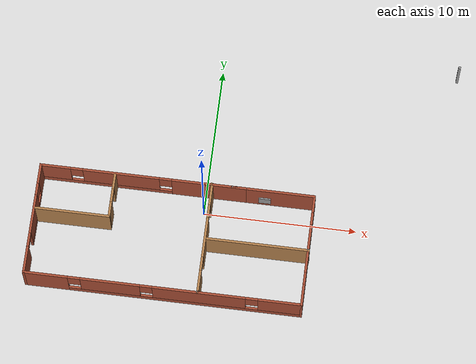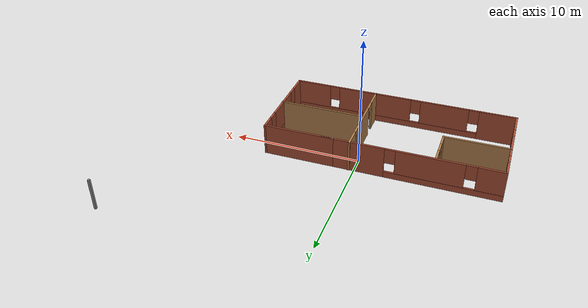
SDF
<?xml version='1.0'?>
<sdf version='1.6'>
  <model name='House'>
    <pose frame=''>2.36434 2.59934 0 0 -0 0</pose>
    <link name='Wall_13'>
      <pose frame=''>-6.46944 -1.37364 0 0 -0 3.14159</pose>
      <visual name='Wall_13_Visual_0'>
        <pose frame=''>-4.3125 0 1.25 0 -0 0</pose>
        <geometry>
          <box>
            <size>4.875 0.15 2.5</size>
          </box>
        </geometry>
        <material>
          <script>
            <uri>file://media/materials/scripts/gazebo.material</uri>
            <name>Gazebo/Bricks</name>
          </script>
          <ambient>1 1 1 1</ambient>
        </material>
        <meta>
          <layer>0</layer>
        </meta>
      </visual>
      <collision name='Wall_13_Collision_0'>
        <geometry>
          <box>
            <size>4.875 0.15 2.5</size>
          </box>
        </geometry>
        <pose frame=''>-4.3125 0 1.25 0 -0 0</pose>
      </collision>
      <visual name='Wall_13_Visual_1'>
        <pose frame=''>2.4375 0 0.25 0 -0 0</pose>
        <geometry>
          <box>
            <size>8.625 0.15 0.5</size>
          </box>
        </geometry>
        <material>
          <script>
            <uri>file://media/materials/scripts/gazebo.material</uri>
            <name>Gazebo/Bricks</name>
          </script>
          <ambient>1 1 1 1</ambient>
        </material>
        <meta>
          <layer>0</layer>
        </meta>
      </visual>
      <collision name='Wall_13_Collision_1'>
        <geometry>
          <box>
            <size>8.625 0.15 0.5</size>
          </box>
        </geometry>
        <pose frame=''>2.4375 0 0.25 0 -0 0</pose>
      </collision>
      <visual name='Wall_13_Visual_2'>
        <pose frame=''>1.425 0 1.5 0 -0 0</pose>
        <geometry>
          <box>
            <size>5 0.15 2</size>
          </box>
        </geometry>
        <material>
          <script>
            <uri>file://media/materials/scripts/gazebo.material</uri>
            <name>Gazebo/Bricks</name>
          </script>
          <ambient>1 1 1 1</ambient>
        </material>
        <meta>
          <layer>0</layer>
        </meta>
      </visual>
      <collision name='Wall_13_Collision_2'>
        <geometry>
          <box>
            <size>5 0.15 2</size>
          </box>
        </geometry>
        <pose frame=''>1.425 0 1.5 0 -0 0</pose>
      </collision>
      <visual name='Wall_13_Visual_3'>
        <pose frame=''>5.7375 0 1.5 0 -0 0</pose>
        <geometry>
          <box>
            <size>2.025 0.15 2</size>
          </box>
        </geometry>
        <material>
          <script>
            <uri>file://media/materials/scripts/gazebo.material</uri>
            <name>Gazebo/Bricks</name>
          </script>
          <ambient>1 1 1 1</ambient>
        </material>
        <meta>
          <layer>0</layer>
        </meta>
      </visual>
      <collision name='Wall_13_Collision_3'>
        <geometry>
          <box>
            <size>2.025 0.15 2</size>
          </box>
        </geometry>
        <pose frame=''>5.7375 0 1.5 0 -0 0</pose>
      </collision>
      <visual name='Wall_13_Visual_4'>
        <pose frame=''>-1.475 0 1.9 0 -0 0</pose>
        <geometry>
          <box>
            <size>0.8 0.15 1.2</size>
          </box>
        </geometry>
        <material>
          <script>
            <uri>file://media/materials/scripts/gazebo.material</uri>
            <name>Gazebo/Bricks</name>
          </script>
          <ambient>1 1 1 1</ambient>
        </material>
        <meta>
          <layer>0</layer>
        </meta>
      </visual>
      <collision name='Wall_13_Collision_4'>
        <geometry>
          <box>
            <size>0.8 0.15 1.2</size>
          </box>
        </geometry>
        <pose frame=''>-1.475 0 1.9 0 -0 0</pose>
      </collision>
      <visual name='Wall_13_Visual_5'>
        <pose frame=''>4.325 0 1.9 0 -0 0</pose>
        <geometry>
          <box>
            <size>0.8 0.15 1.2</size>
          </box>
        </geometry>
        <material>
          <script>
            <uri>file://media/materials/scripts/gazebo.material</uri>
            <name>Gazebo/Bricks</name>
          </script>
          <ambient>1 1 1 1</ambient>
        </material>
        <meta>
          <layer>0</layer>
        </meta>
      </visual>
      <collision name='Wall_13_Collision_5'>
        <geometry>
          <box>
            <size>0.8 0.15 1.2</size>
          </box>
        </geometry>
        <pose frame=''>4.325 0 1.9 0 -0 0</pose>
      </collision>
    </link>
    <link name='Wall_14'>
      <pose frame=''>-13.1444 -5.04864 0 0 0 -1.5708</pose>
      <visual name='Wall_14_Visual_0'>
        <pose frame=''>-3.0725 0 1.25 0 -0 0</pose>
        <geometry>
          <box>
            <size>1.355 0.15 2.5</size>
          </box>
        </geometry>
        <material>
          <script>
            <uri>file://media/materials/scripts/gazebo.material</uri>
            <name>Gazebo/Bricks</name>
          </script>
          <ambient>1 1 1 1</ambient>
        </material>
        <meta>
          <layer>0</layer>
        </meta>
      </visual>
      <collision name='Wall_14_Collision_0'>
        <geometry>
          <box>
            <size>1.355 0.15 2.5</size>
          </box>
        </geometry>
        <pose frame=''>-3.0725 0 1.25 0 -0 0</pose>
      </collision>
      <visual name='Wall_14_Visual_1'>
        <pose frame=''>2.8425 0 1.25 0 -0 0</pose>
        <geometry>
          <box>
            <size>1.815 0.15 2.5</size>
          </box>
        </geometry>
        <material>
          <script>
            <uri>file://media/materials/scripts/gazebo.material</uri>
            <name>Gazebo/Bricks</name>
          </script>
          <ambient>1 1 1 1</ambient>
        </material>
        <meta>
          <layer>0</layer>
        </meta>
      </visual>
      <collision name='Wall_14_Collision_1'>
        <geometry>
          <box>
            <size>1.815 0.15 2.5</size>
          </box>
        </geometry>
        <pose frame=''>2.8425 0 1.25 0 -0 0</pose>
      </collision>
      <visual name='Wall_14_Visual_2'>
        <pose frame=''>-0.68 0 0.25 0 -0 0</pose>
        <geometry>
          <box>
            <size>3.43 0.15 0.5</size>
          </box>
        </geometry>
        <material>
          <script>
            <uri>file://media/materials/scripts/gazebo.material</uri>
            <name>Gazebo/Bricks</name>
          </script>
          <ambient>1 1 1 1</ambient>
        </material>
        <meta>
          <layer>0</layer>
        </meta>
      </visual>
      <collision name='Wall_14_Collision_2'>
        <geometry>
          <box>
            <size>3.43 0.15 0.5</size>
          </box>
        </geometry>
        <pose frame=''>-0.68 0 0.25 0 -0 0</pose>
      </collision>
      <visual name='Wall_14_Visual_3'>
        <pose frame=''>-0.28 0 1.5 0 -0 0</pose>
        <geometry>
          <box>
            <size>2.63 0.15 2</size>
          </box>
        </geometry>
        <material>
          <script>
            <uri>file://media/materials/scripts/gazebo.material</uri>
            <name>Gazebo/Bricks</name>
          </script>
          <ambient>1 1 1 1</ambient>
        </material>
        <meta>
          <layer>0</layer>
        </meta>
      </visual>
      <collision name='Wall_14_Collision_3'>
        <geometry>
          <box>
            <size>2.63 0.15 2</size>
          </box>
        </geometry>
        <pose frame=''>-0.28 0 1.5 0 -0 0</pose>
      </collision>
      <visual name='Wall_14_Visual_4'>
        <pose frame=''>-1.995 0 1.9 0 -0 0</pose>
        <geometry>
          <box>
            <size>0.8 0.15 1.2</size>
          </box>
        </geometry>
        <material>
          <script>
            <uri>file://media/materials/scripts/gazebo.material</uri>
            <name>Gazebo/Bricks</name>
          </script>
          <ambient>1 1 1 1</ambient>
        </material>
        <meta>
          <layer>0</layer>
        </meta>
      </visual>
      <collision name='Wall_14_Collision_4'>
        <geometry>
          <box>
            <size>0.8 0.15 1.2</size>
          </box>
        </geometry>
        <pose frame=''>-1.995 0 1.9 0 -0 0</pose>
      </collision>
      <visual name='Wall_14_Visual_5'>
        <pose frame=''>1.485 0 2.25 0 -0 0</pose>
        <geometry>
          <box>
            <size>0.9 0.15 0.5</size>
          </box>
        </geometry>
        <material>
          <script>
            <uri>file://media/materials/scripts/gazebo.material</uri>
            <name>Gazebo/Bricks</name>
          </script>
          <ambient>1 1 1 1</ambient>
        </material>
        <meta>
          <layer>0</layer>
        </meta>
      </visual>
      <collision name='Wall_14_Collision_5'>
        <geometry>
          <box>
            <size>0.9 0.15 0.5</size>
          </box>
        </geometry>
        <pose frame=''>1.485 0 2.25 0 -0 0</pose>
      </collision>
    </link>
    <link name='Wall_15'>
      <pose frame=''>-4.21944 -8.72364 0 0 -0 0</pose>
      <visual name='Wall_15_Visual_0'>
        <pose frame=''>-7.5475 0 1.25 0 -0 0</pose>
        <geometry>
          <box>
            <size>2.905 0.15 2.5</size>
          </box>
        </geometry>
        <material>
          <script>
            <uri>file://media/materials/scripts/gazebo.material</uri>
            <name>Gazebo/Bricks</name>
          </script>
          <ambient>1 1 1 1</ambient>
        </material>
        <meta>
          <layer>0</layer>
        </meta>
      </visual>
      <collision name='Wall_15_Collision_0'>
        <geometry>
          <box>
            <size>2.905 0.15 2.5</size>
          </box>
        </geometry>
        <pose frame=''>-7.5475 0 1.25 0 -0 0</pose>
      </collision>
      <visual name='Wall_15_Visual_1'>
        <pose frame=''>1.4525 0 0.25 0 -0 0</pose>
        <geometry>
          <box>
            <size>15.095 0.15 0.5</size>
          </box>
        </geometry>
        <material>
          <script>
            <uri>file://media/materials/scripts/gazebo.material</uri>
            <name>Gazebo/Bricks</name>
          </script>
          <ambient>1 1 1 1</ambient>
        </material>
        <meta>
          <layer>0</layer>
        </meta>
      </visual>
      <collision name='Wall_15_Collision_1'>
        <geometry>
          <box>
            <size>15.095 0.15 0.5</size>
          </box>
        </geometry>
        <pose frame=''>1.4525 0 0.25 0 -0 0</pose>
      </collision>
      <visual name='Wall_15_Visual_2'>
        <pose frame=''>-3.375 0 1.5 0 -0 0</pose>
        <geometry>
          <box>
            <size>3.84 0.15 2</size>
          </box>
        </geometry>
        <material>
          <script>
            <uri>file://media/materials/scripts/gazebo.material</uri>
            <name>Gazebo/Bricks</name>
          </script>
          <ambient>1 1 1 1</ambient>
        </material>
        <meta>
          <layer>0</layer>
        </meta>
      </visual>
      <collision name='Wall_15_Collision_2'>
        <geometry>
          <box>
            <size>3.84 0.15 2</size>
          </box>
        </geometry>
        <pose frame=''>-3.375 0 1.5 0 -0 0</pose>
      </collision>
      <visual name='Wall_15_Visual_3'>
        <pose frame=''>2.345 0 1.5 0 -0 0</pose>
        <geometry>
          <box>
            <size>6 0.15 2</size>
          </box>
        </geometry>
        <material>
          <script>
            <uri>file://media/materials/scripts/gazebo.material</uri>
            <name>Gazebo/Bricks</name>
          </script>
          <ambient>1 1 1 1</ambient>
        </material>
        <meta>
          <layer>0</layer>
        </meta>
      </visual>
      <collision name='Wall_15_Collision_3'>
        <geometry>
          <box>
            <size>6 0.15 2</size>
          </box>
        </geometry>
        <pose frame=''>2.345 0 1.5 0 -0 0</pose>
      </collision>
      <visual name='Wall_15_Visual_4'>
        <pose frame=''>7.5725 0 1.5 0 -0 0</pose>
        <geometry>
          <box>
            <size>2.855 0.15 2</size>
          </box>
        </geometry>
        <material>
          <script>
            <uri>file://media/materials/scripts/gazebo.material</uri>
            <name>Gazebo/Bricks</name>
          </script>
          <ambient>1 1 1 1</ambient>
        </material>
        <meta>
          <layer>0</layer>
        </meta>
      </visual>
      <collision name='Wall_15_Collision_4'>
        <geometry>
          <box>
            <size>2.855 0.15 2</size>
          </box>
        </geometry>
        <pose frame=''>7.5725 0 1.5 0 -0 0</pose>
      </collision>
      <visual name='Wall_15_Visual_5'>
        <pose frame=''>-5.695 0 1.9 0 -0 0</pose>
        <geometry>
          <box>
            <size>0.8 0.15 1.2</size>
          </box>
        </geometry>
        <material>
          <script>
            <uri>file://media/materials/scripts/gazebo.material</uri>
            <name>Gazebo/Bricks</name>
          </script>
          <ambient>1 1 1 1</ambient>
        </material>
        <meta>
          <layer>0</layer>
        </meta>
      </visual>
      <collision name='Wall_15_Collision_5'>
        <geometry>
          <box>
            <size>0.8 0.15 1.2</size>
          </box>
        </geometry>
        <pose frame=''>-5.695 0 1.9 0 -0 0</pose>
      </collision>
      <visual name='Wall_15_Visual_6'>
        <pose frame=''>-1.055 0 1.9 0 -0 0</pose>
        <geometry>
          <box>
            <size>0.8 0.15 1.2</size>
          </box>
        </geometry>
        <material>
          <script>
            <uri>file://media/materials/scripts/gazebo.material</uri>
            <name>Gazebo/Bricks</name>
          </script>
          <ambient>1 1 1 1</ambient>
        </material>
        <meta>
          <layer>0</layer>
        </meta>
      </visual>
      <collision name='Wall_15_Collision_6'>
        <geometry>
          <box>
            <size>0.8 0.15 1.2</size>
          </box>
        </geometry>
        <pose frame=''>-1.055 0 1.9 0 -0 0</pose>
      </collision>
      <visual name='Wall_15_Visual_7'>
        <pose frame=''>5.745 0 1.9 0 -0 0</pose>
        <geometry>
          <box>
            <size>0.8 0.15 1.2</size>
          </box>
        </geometry>
        <material>
          <script>
            <uri>file://media/materials/scripts/gazebo.material</uri>
            <name>Gazebo/Bricks</name>
          </script>
          <ambient>1 1 1 1</ambient>
        </material>
        <meta>
          <layer>0</layer>
        </meta>
      </visual>
      <collision name='Wall_15_Collision_7'>
        <geometry>
          <box>
            <size>0.8 0.15 1.2</size>
          </box>
        </geometry>
        <pose frame=''>5.745 0 1.9 0 -0 0</pose>
      </collision>
    </link>
    <link name='Wall_16'>
      <pose frame=''>4.70556 -5.04864 0 0 -0 1.5708</pose>
      <visual name='Wall_16_Visual_0'>
        <pose frame=''>-3.0175 0 1.25 0 -0 0</pose>
        <geometry>
          <box>
            <size>1.465 0.15 2.5</size>
          </box>
        </geometry>
        <material>
          <script>
            <uri>file://media/materials/scripts/gazebo.material</uri>
            <name>Gazebo/Bricks</name>
          </script>
          <ambient>1 1 1 1</ambient>
        </material>
        <meta>
          <layer>0</layer>
        </meta>
      </visual>
      <collision name='Wall_16_Collision_0'>
        <geometry>
          <box>
            <size>1.465 0.15 2.5</size>
          </box>
        </geometry>
        <pose frame=''>-3.0175 0 1.25 0 -0 0</pose>
      </collision>
      <visual name='Wall_16_Visual_1'>
        <pose frame=''>0.7325 0 0.25 0 -0 0</pose>
        <geometry>
          <box>
            <size>6.035 0.15 0.5</size>
          </box>
        </geometry>
        <material>
          <script>
            <uri>file://media/materials/scripts/gazebo.material</uri>
            <name>Gazebo/Bricks</name>
          </script>
          <ambient>1 1 1 1</ambient>
        </material>
        <meta>
          <layer>0</layer>
        </meta>
      </visual>
      <collision name='Wall_16_Collision_1'>
        <geometry>
          <box>
            <size>6.035 0.15 0.5</size>
          </box>
        </geometry>
        <pose frame=''>0.7325 0 0.25 0 -0 0</pose>
      </collision>
      <visual name='Wall_16_Visual_2'>
        <pose frame=''>0.135 0 1.5 0 -0 0</pose>
        <geometry>
          <box>
            <size>3.24 0.15 2</size>
          </box>
        </geometry>
        <material>
          <script>
            <uri>file://media/materials/scripts/gazebo.material</uri>
            <name>Gazebo/Bricks</name>
          </script>
          <ambient>1 1 1 1</ambient>
        </material>
        <meta>
          <layer>0</layer>
        </meta>
      </visual>
      <collision name='Wall_16_Collision_2'>
        <geometry>
          <box>
            <size>3.24 0.15 2</size>
          </box>
        </geometry>
        <pose frame=''>0.135 0 1.5 0 -0 0</pose>
      </collision>
      <visual name='Wall_16_Visual_3'>
        <pose frame=''>3.1525 0 1.5 0 -0 0</pose>
        <geometry>
          <box>
            <size>1.195 0.15 2</size>
          </box>
        </geometry>
        <material>
          <script>
            <uri>file://media/materials/scripts/gazebo.material</uri>
            <name>Gazebo/Bricks</name>
          </script>
          <ambient>1 1 1 1</ambient>
        </material>
        <meta>
          <layer>0</layer>
        </meta>
      </visual>
      <collision name='Wall_16_Collision_3'>
        <geometry>
          <box>
            <size>1.195 0.15 2</size>
          </box>
        </geometry>
        <pose frame=''>3.1525 0 1.5 0 -0 0</pose>
      </collision>
      <visual name='Wall_16_Visual_4'>
        <pose frame=''>-1.885 0 1.9 0 -0 0</pose>
        <geometry>
          <box>
            <size>0.8 0.15 1.2</size>
          </box>
        </geometry>
        <material>
          <script>
            <uri>file://media/materials/scripts/gazebo.material</uri>
            <name>Gazebo/Bricks</name>
          </script>
          <ambient>1 1 1 1</ambient>
        </material>
        <meta>
          <layer>0</layer>
        </meta>
      </visual>
      <collision name='Wall_16_Collision_4'>
        <geometry>
          <box>
            <size>0.8 0.15 1.2</size>
          </box>
        </geometry>
        <pose frame=''>-1.885 0 1.9 0 -0 0</pose>
      </collision>
      <visual name='Wall_16_Visual_5'>
        <pose frame=''>2.155 0 1.9 0 -0 0</pose>
        <geometry>
          <box>
            <size>0.8 0.15 1.2</size>
          </box>
        </geometry>
        <material>
          <script>
            <uri>file://media/materials/scripts/gazebo.material</uri>
            <name>Gazebo/Bricks</name>
          </script>
          <ambient>1 1 1 1</ambient>
        </material>
        <meta>
          <layer>0</layer>
        </meta>
      </visual>
      <collision name='Wall_16_Collision_5'>
        <geometry>
          <box>
            <size>0.8 0.15 1.2</size>
          </box>
        </geometry>
        <pose frame=''>2.155 0 1.9 0 -0 0</pose>
      </collision>
    </link>
    <link name='Wall_17'>
      <collision name='Wall_17_Collision'>
        <geometry>
          <box>
            <size>5.5 0.15 2.5</size>
          </box>
        </geometry>
        <pose frame=''>0 0 1.25 0 -0 0</pose>
      </collision>
      <visual name='Wall_17_Visual'>
        <pose frame=''>0 0 1.25 0 -0 0</pose>
        <geometry>
          <box>
            <size>5.5 0.15 2.5</size>
          </box>
        </geometry>
        <material>
          <script>
            <uri>file://media/materials/scripts/gazebo.material</uri>
            <name>Gazebo/Bricks</name>
          </script>
          <ambient>1 1 1 1</ambient>
        </material>
        <meta>
          <layer>0</layer>
        </meta>
      </visual>
      <pose frame=''>2.03056 -1.37364 0 0 -0 3.14159</pose>
    </link>
    <link name='Wall_18'>
      <collision name='Wall_18_Collision'>
        <geometry>
          <box>
            <size>0.16 0.15 2.5</size>
          </box>
        </geometry>
        <pose frame=''>0 0 1.25 0 -0 0</pose>
      </collision>
      <visual name='Wall_18_Visual'>
        <pose frame=''>0 0 1.25 0 -0 0</pose>
        <geometry>
          <box>
            <size>0.16 0.15 2.5</size>
          </box>
        </geometry>
        <material>
          <script>
            <uri>file://media/materials/scripts/gazebo.material</uri>
            <name>Gazebo/Grey</name>
          </script>
          <ambient>1 1 1 1</ambient>
        </material>
        <meta>
          <layer>0</layer>
        </meta>
      </visual>
      <pose frame=''>-0.63944 -1.37364 0 0 -0 0</pose>
    </link>
    <link name='Wall_2'>
      <collision name='Wall_2_Collision'>
        <geometry>
          <box>
            <size>0.16 0.15 2.5</size>
          </box>
        </geometry>
        <pose frame=''>0 0 1.25 0 -0 0</pose>
      </collision>
      <visual name='Wall_2_Visual'>
        <pose frame=''>0 0 1.25 0 -0 0</pose>
        <geometry>
          <box>
            <size>0.16 0.15 2.5</size>
          </box>
        </geometry>
        <material>
          <script>
            <uri>file://media/materials/scripts/gazebo.material</uri>
            <name>Gazebo/Grey</name>
          </script>
          <ambient>1 1 1 1</ambient>
        </material>
        <meta>
          <layer>0</layer>
        </meta>
      </visual>
      <pose frame=''>13.1394 8.72364 0 0 -0 0</pose>
    </link>
    <link name='Wall_28'>
      <pose frame=''>-1.95444 -5.00864 0 0 0 -1.5708</pose>
      <visual name='Wall_28_Visual_0'>
        <pose frame=''>-2.9975 0 1.25 0 -0 0</pose>
        <geometry>
          <box>
            <size>1.505 0.15 2.5</size>
          </box>
        </geometry>
        <material>
          <script>
            <uri>file://media/materials/scripts/gazebo.material</uri>
            <name>Gazebo/Wood</name>
          </script>
          <ambient>1 1 1 1</ambient>
        </material>
        <meta>
          <layer>0</layer>
        </meta>
      </visual>
      <collision name='Wall_28_Collision_0'>
        <geometry>
          <box>
            <size>1.505 0.15 2.5</size>
          </box>
        </geometry>
        <pose frame=''>-2.9975 0 1.25 0 -0 0</pose>
      </collision>
      <visual name='Wall_28_Visual_1'>
        <pose frame=''>-0.015 0 1.25 0 -0 0</pose>
        <geometry>
          <box>
            <size>2.66 0.15 2.5</size>
          </box>
        </geometry>
        <material>
          <script>
            <uri>file://media/materials/scripts/gazebo.material</uri>
            <name>Gazebo/Wood</name>
          </script>
          <ambient>1 1 1 1</ambient>
        </material>
        <meta>
          <layer>0</layer>
        </meta>
      </visual>
      <collision name='Wall_28_Collision_1'>
        <geometry>
          <box>
            <size>2.66 0.15 2.5</size>
          </box>
        </geometry>
        <pose frame=''>-0.015 0 1.25 0 -0 0</pose>
      </collision>
      <visual name='Wall_28_Visual_2'>
        <pose frame=''>2.9825 0 1.25 0 -0 0</pose>
        <geometry>
          <box>
            <size>1.535 0.15 2.5</size>
          </box>
        </geometry>
        <material>
          <script>
            <uri>file://media/materials/scripts/gazebo.material</uri>
            <name>Gazebo/Wood</name>
          </script>
          <ambient>1 1 1 1</ambient>
        </material>
        <meta>
          <layer>0</layer>
        </meta>
      </visual>
      <collision name='Wall_28_Collision_2'>
        <geometry>
          <box>
            <size>1.535 0.15 2.5</size>
          </box>
        </geometry>
        <pose frame=''>2.9825 0 1.25 0 -0 0</pose>
      </collision>
      <visual name='Wall_28_Visual_3'>
        <pose frame=''>-1.795 0 2.25 0 -0 0</pose>
        <geometry>
          <box>
            <size>0.9 0.15 0.5</size>
          </box>
        </geometry>
        <material>
          <script>
            <uri>file://media/materials/scripts/gazebo.material</uri>
            <name>Gazebo/Wood</name>
          </script>
          <ambient>1 1 1 1</ambient>
        </material>
        <meta>
          <layer>0</layer>
        </meta>
      </visual>
      <collision name='Wall_28_Collision_3'>
        <geometry>
          <box>
            <size>0.9 0.15 0.5</size>
          </box>
        </geometry>
        <pose frame=''>-1.795 0 2.25 0 -0 0</pose>
      </collision>
      <visual name='Wall_28_Visual_4'>
        <pose frame=''>1.765 0 2.25 0 -0 0</pose>
        <geometry>
          <box>
            <size>0.9 0.15 0.5</size>
          </box>
        </geometry>
        <material>
          <script>
            <uri>file://media/materials/scripts/gazebo.material</uri>
            <name>Gazebo/Wood</name>
          </script>
          <ambient>1 1 1 1</ambient>
        </material>
        <meta>
          <layer>0</layer>
        </meta>
      </visual>
      <collision name='Wall_28_Collision_4'>
        <geometry>
          <box>
            <size>0.9 0.15 0.5</size>
          </box>
        </geometry>
        <pose frame=''>1.765 0 2.25 0 -0 0</pose>
      </collision>
    </link>
    <link name='Wall_29'>
      <collision name='Wall_29_Collision'>
        <geometry>
          <box>
            <size>0.16 0.15 2.5</size>
          </box>
        </geometry>
        <pose frame=''>0 0 1.25 0 -0 0</pose>
      </collision>
      <visual name='Wall_29_Visual'>
        <pose frame=''>0 0 1.25 0 -0 0</pose>
        <geometry>
          <box>
            <size>0.16 0.15 2.5</size>
          </box>
        </geometry>
        <material>
          <script>
            <uri>file://media/materials/scripts/gazebo.material</uri>
            <name>Gazebo/Grey</name>
          </script>
          <ambient>1 1 1 1</ambient>
        </material>
        <meta>
          <layer>0</layer>
        </meta>
      </visual>
      <pose frame=''>-1.94944 -8.68364 0 0 -0 0</pose>
    </link>
    <link name='Wall_34'>
      <collision name='Wall_34_Collision'>
        <geometry>
          <box>
            <size>0.16 0.15 2.5</size>
          </box>
        </geometry>
        <pose frame=''>0 0 1.25 0 -0 0</pose>
      </collision>
      <visual name='Wall_34_Visual'>
        <pose frame=''>0 0 1.25 0 -0 0</pose>
        <geometry>
          <box>
            <size>0.16 0.15 2.5</size>
          </box>
        </geometry>
        <material>
          <script>
            <uri>file://media/materials/scripts/gazebo.material</uri>
            <name>Gazebo/Grey</name>
          </script>
          <ambient>1 1 1 1</ambient>
        </material>
        <meta>
          <layer>0</layer>
        </meta>
      </visual>
      <pose frame=''>4.73056 -5.05364 0 0 -0 0</pose>
    </link>
    <link name='Wall_35'>
      <collision name='Wall_35_Collision'>
        <geometry>
          <box>
            <size>6.75 0.15 2.5</size>
          </box>
        </geometry>
        <pose frame=''>0 0 1.25 0 -0 0</pose>
      </collision>
      <visual name='Wall_35_Visual'>
        <pose frame=''>0 0 1.25 0 -0 0</pose>
        <geometry>
          <box>
            <size>6.75 0.15 2.5</size>
          </box>
        </geometry>
        <material>
          <script>
            <uri>file://media/materials/scripts/gazebo.material</uri>
            <name>Gazebo/Wood</name>
          </script>
          <ambient>1 1 1 1</ambient>
        </material>
        <meta>
          <layer>0</layer>
        </meta>
      </visual>
      <pose frame=''>1.43556 -5.05364 0 0 -0 3.14159</pose>
    </link>
    <link name='Wall_37'>
      <collision name='Wall_37_Collision'>
        <geometry>
          <box>
            <size>5 0.15 2.5</size>
          </box>
        </geometry>
        <pose frame=''>0 0 1.25 0 -0 0</pose>
      </collision>
      <visual name='Wall_37_Visual'>
        <pose frame=''>0 0 1.25 0 -0 0</pose>
        <geometry>
          <box>
            <size>5 0.15 2.5</size>
          </box>
        </geometry>
        <material>
          <script>
            <uri>file://media/materials/scripts/gazebo.material</uri>
            <name>Gazebo/Wood</name>
          </script>
          <ambient>1 1 1 1</ambient>
        </material>
        <meta>
          <layer>0</layer>
        </meta>
      </visual>
      <pose frame=''>-10.6994 -4.33364 0 0 -0 3.14159</pose>
    </link>
    <link name='Wall_43'>
      <pose frame=''>-8.27444 -2.90864 0 0 -0 1.5708</pose>
      <visual name='Wall_43_Visual_0'>
        <pose frame=''>-0.9675 0 1.25 0 -0 0</pose>
        <geometry>
          <box>
            <size>1.065 0.15 2.5</size>
          </box>
        </geometry>
        <material>
          <script>
            <uri>file://media/materials/scripts/gazebo.material</uri>
            <name>Gazebo/Wood</name>
          </script>
          <ambient>1 1 1 1</ambient>
        </material>
        <meta>
          <layer>0</layer>
        </meta>
      </visual>
      <collision name='Wall_43_Collision_0'>
        <geometry>
          <box>
            <size>1.065 0.15 2.5</size>
          </box>
        </geometry>
        <pose frame=''>-0.9675 0 1.25 0 -0 0</pose>
      </collision>
      <visual name='Wall_43_Visual_1'>
        <pose frame=''>0.9825 0 1.25 0 -0 0</pose>
        <geometry>
          <box>
            <size>1.035 0.15 2.5</size>
          </box>
        </geometry>
        <material>
          <script>
            <uri>file://media/materials/scripts/gazebo.material</uri>
            <name>Gazebo/Wood</name>
          </script>
          <ambient>1 1 1 1</ambient>
        </material>
        <meta>
          <layer>0</layer>
        </meta>
      </visual>
      <collision name='Wall_43_Collision_1'>
        <geometry>
          <box>
            <size>1.035 0.15 2.5</size>
          </box>
        </geometry>
        <pose frame=''>0.9825 0 1.25 0 -0 0</pose>
      </collision>
      <visual name='Wall_43_Visual_2'>
        <pose frame=''>0.015 0 2.25 0 -0 0</pose>
        <geometry>
          <box>
            <size>0.9 0.15 0.5</size>
          </box>
        </geometry>
        <material>
          <script>
            <uri>file://media/materials/scripts/gazebo.material</uri>
            <name>Gazebo/Wood</name>
          </script>
          <ambient>1 1 1 1</ambient>
        </material>
        <meta>
          <layer>0</layer>
        </meta>
      </visual>
      <collision name='Wall_43_Collision_2'>
        <geometry>
          <box>
            <size>0.9 0.15 0.5</size>
          </box>
        </geometry>
        <pose frame=''>0.015 0 2.25 0 -0 0</pose>
      </collision>
    </link>
    <link name='Window_3'>
      <collision name='Window_3_Collision'>
        <geometry>
          <box>
            <size>0.8 0.17 0.8</size>
          </box>
        </geometry>
        <pose frame=''>0 0 0.4 0 -0 0</pose>
      </collision>
      <visual name='Window_3_Visual'>
        <pose frame=''>0 0 0.4 0 -0 0</pose>
        <geometry>
          <box>
            <size>0.8 0.17 0.8</size>
          </box>
        </geometry>
        <material>
          <script>
            <uri>file://media/materials/scripts/gazebo.material</uri>
            <name>Gazebo/Grey</name>
          </script>
        </material>
      </visual>
      <pose frame=''>1.48556 -1.45364 0.5 0 -0 0</pose>
    </link>
    <static>1</static>
  </model>
</sdf>
